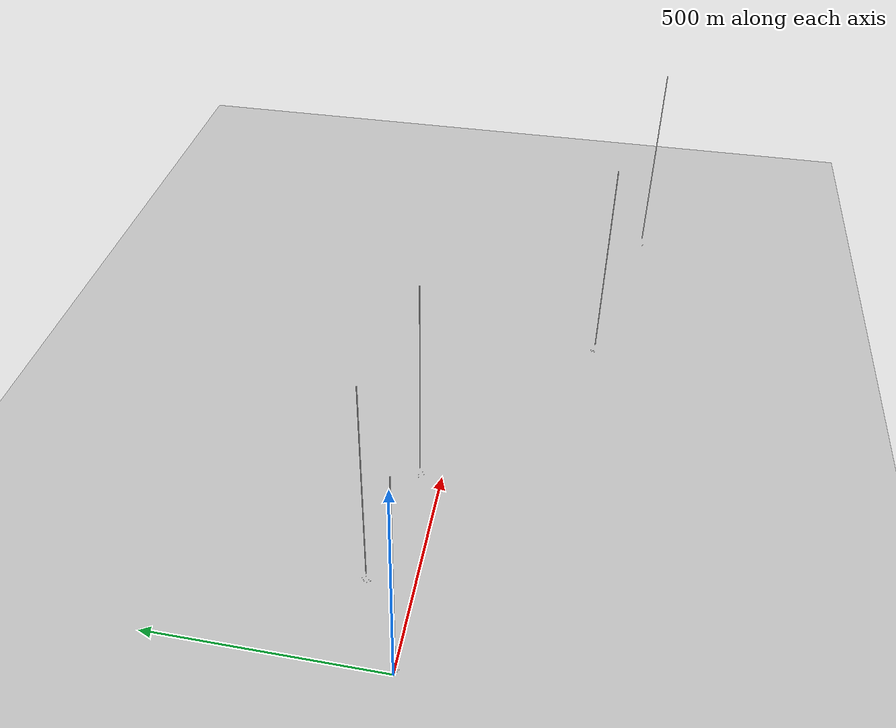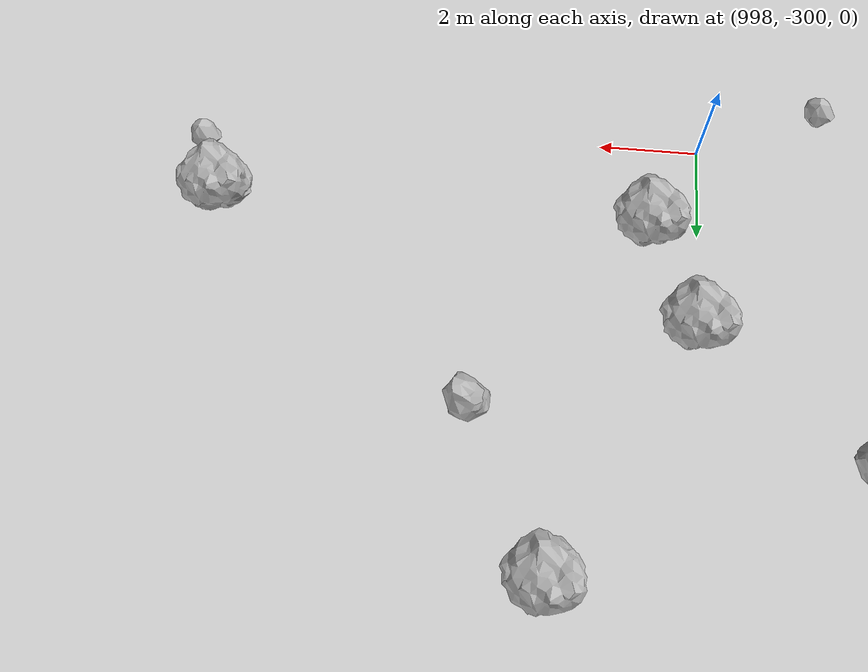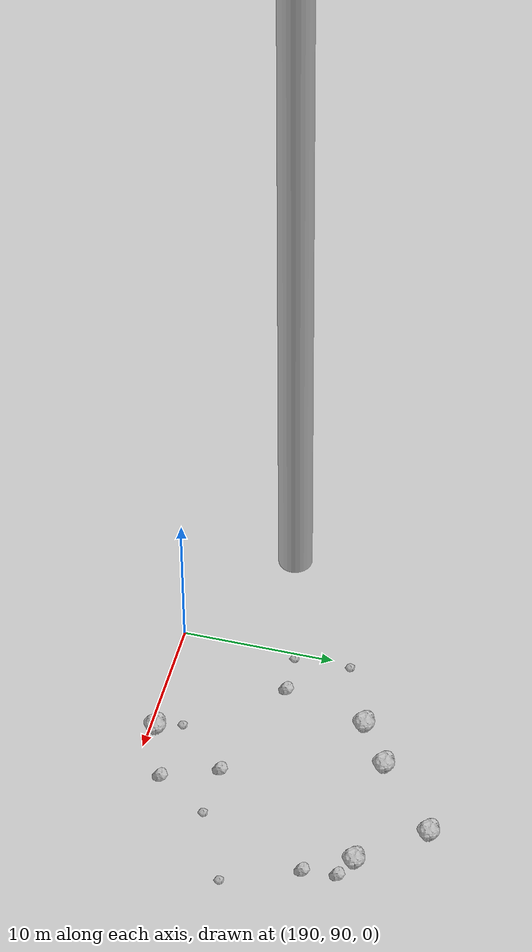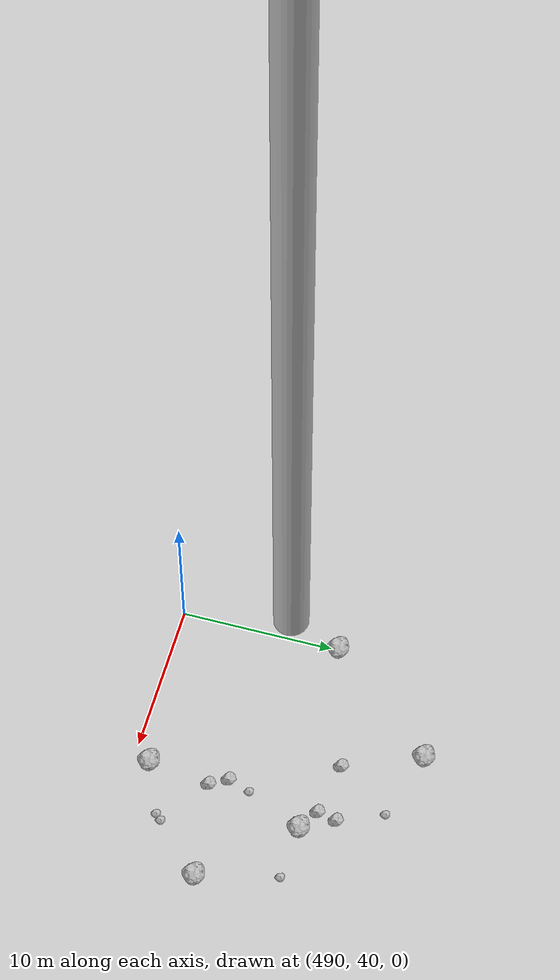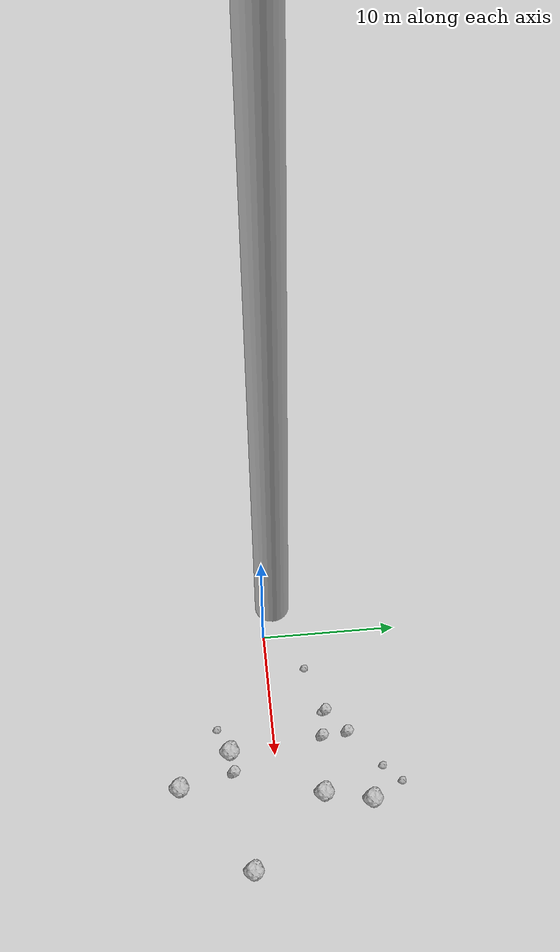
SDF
<?xml version="1.0" ?>
<sdf version="1.6">
  <world name="default">

    <include>
      <uri>model://custom_ground</uri>
    </include>

    <include>
      <uri>model://sun</uri>
    </include>

    <spherical_coordinates>
      <surface_model>EARTH_WGS84</surface_model>
      <latitude_deg>38.161479</latitude_deg>
      <longitude_deg>-122.454630</longitude_deg>
      <elevation>488.0</elevation>
      <heading_deg>90</heading_deg>
    </spherical_coordinates>

    <model name="rock1_0_0">
      <include>
        <uri>model://rock1</uri>
        <pose>18.945592582820066 -2.251782098358534 0.5 0 0 0</pose>
      </include>
    </model>
    <model name="rock1_0_1">
      <include>
        <uri>model://rock1</uri>
        <pose>13.510065274126166 3.206686466645195 0.5 0 0 0</pose>
      </include>
    </model>
    <model name="rock1_0_2">
      <include>
        <uri>model://rock1</uri>
        <pose>14.309338354610706 6.618686021669358 0.5 0 0 0</pose>
      </include>
    </model>
    <model name="rock1_0_3">
      <include>
        <uri>model://rock1</uri>
        <pose>12.240812636821385 -7.091646086739698 0.5 0 0 0</pose>
      </include>
    </model>
    <model name="rock1_0_4">
      <include>
        <uri>model://rock1</uri>
        <pose>9.663844182001531 -3.2994324802873054 0.5 0 0 0</pose>
      </include>
    </model>
    <model name="rock2_0_0">
      <include>
        <uri>model://rock2</uri>
        <pose>9.562469942733433 -3.0578161341875916 0.3 0 0 0</pose>
      </include>
    </model>
    <model name="rock2_0_1">
      <include>
        <uri>model://rock2</uri>
        <pose>8.71045852474718 5.432463528429315 0.3 0 0 0</pose>
      </include>
    </model>
    <model name="rock2_0_2">
      <include>
        <uri>model://rock2</uri>
        <pose>6.814870044980445 3.9917213263696834 0.3 0 0 0</pose>
      </include>
    </model>
    <model name="rock2_0_3">
      <include>
        <uri>model://rock2</uri>
        <pose>11.220508437540316 -3.0980979722758306 0.3 0 0 0</pose>
      </include>
    </model>
    <model name="rock2_0_4">
      <include>
        <uri>model://rock2</uri>
        <pose>8.866577930000199 3.562852186568195 0.3 0 0 0</pose>
      </include>
    </model>
    <model name="rock3_0_0">
      <include>
        <uri>model://rock3</uri>
        <pose>6.904161500761492 3.6552369714734834 0.2 0 0 0</pose>
      </include>
    </model>
    <model name="rock3_0_1">
      <include>
        <uri>model://rock3</uri>
        <pose>12.959544091633946 8.903511464414326 0.2 0 0 0</pose>
      </include>
    </model>
    <model name="rock3_0_2">
      <include>
        <uri>model://rock3</uri>
        <pose>11.646528310153869 7.654076282421919 0.2 0 0 0</pose>
      </include>
    </model>
    <model name="rock3_0_3">
      <include>
        <uri>model://rock3</uri>
        <pose>7.661260990533229 -4.116494251137119 0.2 0 0 0</pose>
      </include>
    </model>
    <model name="rock3_0_4">
      <include>
        <uri>model://rock3</uri>
        <pose>3.073325616213529 2.780366668401193 0.2 0 0 0</pose>
      </include>
    </model>
    <model name="rock1_1_0">
      <include>
        <uri>model://rock1</uri>
        <pose>195.0283665259713 103.26956270519105 0.5 0 0 0</pose>
      </include>
    </model>
    <model name="rock1_1_1">
      <include>
        <uri>model://rock1</uri>
        <pose>198.00020091039912 105.26463611699543 0.5 0 0 0</pose>
      </include>
    </model>
    <model name="rock1_1_2">
      <include>
        <uri>model://rock1</uri>
        <pose>202.64461187385226 109.20382075038688 0.5 0 0 0</pose>
      </include>
    </model>
    <model name="rock1_1_3">
      <include>
        <uri>model://rock1</uri>
        <pose>198.46462158729682 90.36379142407755 0.5 0 0 0</pose>
      </include>
    </model>
    <model name="rock1_1_4">
      <include>
        <uri>model://rock1</uri>
        <pose>205.89546072893415 105.19616234969338 0.5 0 0 0</pose>
      </include>
    </model>
    <model name="rock2_1_0">
      <include>
        <uri>model://rock2</uri>
        <pose>207.3605969811217 102.28776781576946 0.3 0 0 0</pose>
      </include>
    </model>
    <model name="rock2_1_1">
      <include>
        <uri>model://rock2</uri>
        <pose>193.3047598021332 97.73439522467586 0.3 0 0 0</pose>
      </include>
    </model>
    <model name="rock2_1_2">
      <include>
        <uri>model://rock2</uri>
        <pose>200.81700890472263 95.31495361997146 0.3 0 0 0</pose>
      </include>
    </model>
    <model name="rock2_1_3">
      <include>
        <uri>model://rock2</uri>
        <pose>207.18274994592605 104.48036436890085 0.3 0 0 0</pose>
      </include>
    </model>
    <model name="rock2_1_4">
      <include>
        <uri>model://rock2</uri>
        <pose>202.23922235069872 91.76917607000779 0.3 0 0 0</pose>
      </include>
    </model>
    <model name="rock3_1_0">
      <include>
        <uri>model://rock3</uri>
        <pose>190.55801388910342 97.55763730904896 0.2 0 0 0</pose>
      </include>
    </model>
    <model name="rock3_1_1">
      <include>
        <uri>model://rock3</uri>
        <pose>204.39052019020312 95.12035218046476 0.2 0 0 0</pose>
      </include>
    </model>
    <model name="rock3_1_2">
      <include>
        <uri>model://rock3</uri>
        <pose>197.7891808323422 91.99915048162183 0.2 0 0 0</pose>
      </include>
    </model>
    <model name="rock3_1_3">
      <include>
        <uri>model://rock3</uri>
        <pose>209.2907923985598 97.4721529990797 0.2 0 0 0</pose>
      </include>
    </model>
    <model name="rock3_1_4">
      <include>
        <uri>model://rock3</uri>
        <pose>190.4432332382952 101.26064084017686 0.2 0 0 0</pose>
      </include>
    </model>
    <model name="rock1_2_0">
      <include>
        <uri>model://rock1</uri>
        <pose>490.0923311977863 50.44746747189336 0.5 0 0 0</pose>
      </include>
    </model>
    <model name="rock1_2_1">
      <include>
        <uri>model://rock1</uri>
        <pose>507.9160781651087 45.98090122517868 0.5 0 0 0</pose>
      </include>
    </model>
    <model name="rock1_2_2">
      <include>
        <uri>model://rock1</uri>
        <pose>501.16482391039904 41.01665813985818 0.5 0 0 0</pose>
      </include>
    </model>
    <model name="rock1_2_3">
      <include>
        <uri>model://rock1</uri>
        <pose>503.12358656356747 51.348213806953055 0.5 0 0 0</pose>
      </include>
    </model>
    <model name="rock1_2_4">
      <include>
        <uri>model://rock1</uri>
        <pose>496.2595851745991 57.672542127124956 0.5 0 0 0</pose>
      </include>
    </model>
    <model name="rock2_2_0">
      <include>
        <uri>model://rock2</uri>
        <pose>498.18138945667175 52.816401486626226 0.3 0 0 0</pose>
      </include>
    </model>
    <model name="rock2_2_1">
      <include>
        <uri>model://rock2</uri>
        <pose>501.60325185276577 45.09989722320004 0.3 0 0 0</pose>
      </include>
    </model>
    <model name="rock2_2_2">
      <include>
        <uri>model://rock2</uri>
        <pose>501.926781302502 53.4645784116484 0.3 0 0 0</pose>
      </include>
    </model>
    <model name="rock2_2_3">
      <include>
        <uri>model://rock2</uri>
        <pose>500.96736608921384 46.23675080499163 0.3 0 0 0</pose>
      </include>
    </model>
    <model name="rock2_2_4">
      <include>
        <uri>model://rock2</uri>
        <pose>501.66904178340087 52.20899420933577 0.3 0 0 0</pose>
      </include>
    </model>
    <model name="rock3_2_0">
      <include>
        <uri>model://rock3</uri>
        <pose>500.6973805860492 56.29647294470887 0.2 0 0 0</pose>
      </include>
    </model>
    <model name="rock3_2_1">
      <include>
        <uri>model://rock3</uri>
        <pose>504.80522043513594 42.877326261110454 0.2 0 0 0</pose>
      </include>
    </model>
    <model name="rock3_2_2">
      <include>
        <uri>model://rock3</uri>
        <pose>504.44169131143843 42.48420689784209 0.2 0 0 0</pose>
      </include>
    </model>
    <model name="rock3_2_3">
      <include>
        <uri>model://rock3</uri>
        <pose>506.55799728003666 51.107461614786814 0.2 0 0 0</pose>
      </include>
    </model>
    <model name="rock3_2_4">
      <include>
        <uri>model://rock3</uri>
        <pose>501.4359358112301 47.66529406401717 0.2 0 0 0</pose>
      </include>
    </model>
    <model name="rock1_3_0">
      <include>
        <uri>model://rock1</uri>
        <pose>999.0075095894986 -298.1567963782276 0.5 0 0 0</pose>
      </include>
    </model>
    <model name="rock1_3_1">
      <include>
        <uri>model://rock1</uri>
        <pose>1004.7018617232811 -305.6449221544372 0.5 0 0 0</pose>
      </include>
    </model>
    <model name="rock1_3_2">
      <include>
        <uri>model://rock1</uri>
        <pose>1000.7503701664929 -290.8495286048481 0.5 0 0 0</pose>
      </include>
    </model>
    <model name="rock1_3_3">
      <include>
        <uri>model://rock1</uri>
        <pose>1007.7741240257825 -298.16359737065005 0.5 0 0 0</pose>
      </include>
    </model>
    <model name="rock1_3_4">
      <include>
        <uri>model://rock1</uri>
        <pose>998.0841846184887 -295.9686678093141 0.5 0 0 0</pose>
      </include>
    </model>
    <model name="rock2_3_0">
      <include>
        <uri>model://rock2</uri>
        <pose>994.8108933217845 -293.3823689815548 0.3 0 0 0</pose>
      </include>
    </model>
    <model name="rock2_3_1">
      <include>
        <uri>model://rock2</uri>
        <pose>1002.3121909205271 -293.99886425376934 0.3 0 0 0</pose>
      </include>
    </model>
    <model name="rock2_3_2">
      <include>
        <uri>model://rock2</uri>
        <pose>991.5485012716848 -298.12601409704166 0.3 0 0 0</pose>
      </include>
    </model>
    <model name="rock2_3_3">
      <include>
        <uri>model://rock2</uri>
        <pose>992.0861870293495 -302.83526047619216 0.3 0 0 0</pose>
      </include>
    </model>
    <model name="rock2_3_4">
      <include>
        <uri>model://rock2</uri>
        <pose>993.8319056671002 -300.44168622468607 0.3 0 0 0</pose>
      </include>
    </model>
    <model name="rock3_3_0">
      <include>
        <uri>model://rock3</uri>
        <pose>1008.2066380994096 -299.4571750514861 0.2 0 0 0</pose>
      </include>
    </model>
    <model name="rock3_3_1">
      <include>
        <uri>model://rock3</uri>
        <pose>995.4348608887009 -301.22461252041995 0.2 0 0 0</pose>
      </include>
    </model>
    <model name="rock3_3_2">
      <include>
        <uri>model://rock3</uri>
        <pose>1002.5489214349624 -306.72547832859624 0.2 0 0 0</pose>
      </include>
    </model>
    <model name="rock3_3_3">
      <include>
        <uri>model://rock3</uri>
        <pose>1007.3643044074154 -298.1844641634268 0.2 0 0 0</pose>
      </include>
    </model>
    <model name="rock3_3_4">
      <include>
        <uri>model://rock3</uri>
        <pose>991.9341018708163 -299.01803050245826 0.2 0 0 0</pose>
      </include>
    </model>
    <model name="rock1_4_0">
      <include>
        <uri>model://rock1</uri>
        <pose>1493.2281914423875 -402.869926064098 0.5 0 0 0</pose>
      </include>
    </model>
    <model name="rock1_4_1">
      <include>
        <uri>model://rock1</uri>
        <pose>1495.7569513185413 -399.8620350442882 0.5 0 0 0</pose>
      </include>
    </model>
    <model name="rock1_4_2">
      <include>
        <uri>model://rock1</uri>
        <pose>1505.1268428103767 -393.9993683744541 0.5 0 0 0</pose>
      </include>
    </model>
    <model name="rock1_4_3">
      <include>
        <uri>model://rock1</uri>
        <pose>1496.8113118558765 -404.4080340129234 0.5 0 0 0</pose>
      </include>
    </model>
    <model name="rock1_4_4">
      <include>
        <uri>model://rock1</uri>
        <pose>1506.9095529919841 -399.59000745016624 0.5 0 0 0</pose>
      </include>
    </model>
    <model name="rock2_4_0">
      <include>
        <uri>model://rock2</uri>
        <pose>1503.923161474965 -393.29846635982307 0.3 0 0 0</pose>
      </include>
    </model>
    <model name="rock2_4_1">
      <include>
        <uri>model://rock2</uri>
        <pose>1496.5331164111678 -393.6018658446375 0.3 0 0 0</pose>
      </include>
    </model>
    <model name="rock2_4_2">
      <include>
        <uri>model://rock2</uri>
        <pose>1498.0555282427276 -396.66949113191953 0.3 0 0 0</pose>
      </include>
    </model>
    <model name="rock2_4_3">
      <include>
        <uri>model://rock2</uri>
        <pose>1501.0919502176316 -394.3377825574771 0.3 0 0 0</pose>
      </include>
    </model>
    <model name="rock2_4_4">
      <include>
        <uri>model://rock2</uri>
        <pose>1508.8365913099751 -400.5287526334427 0.3 0 0 0</pose>
      </include>
    </model>
    <model name="rock3_4_0">
      <include>
        <uri>model://rock3</uri>
        <pose>1498.500218423118 -401.45482847103233 0.2 0 0 0</pose>
      </include>
    </model>
    <model name="rock3_4_1">
      <include>
        <uri>model://rock3</uri>
        <pose>1501.905983962302 -405.00799119564624 0.2 0 0 0</pose>
      </include>
    </model>
    <model name="rock3_4_2">
      <include>
        <uri>model://rock3</uri>
        <pose>1492.3200013404787 -403.9757309159606 0.2 0 0 0</pose>
      </include>
    </model>
    <model name="rock3_4_3">
      <include>
        <uri>model://rock3</uri>
        <pose>1493.1239214631032 -402.2078133773231 0.2 0 0 0</pose>
      </include>
    </model>
    <model name="rock3_4_4">
      <include>
        <uri>model://rock3</uri>
        <pose>1496.541023027097 -391.1344479044794 0.2 0 0 0</pose>
      </include>
    </model>

    <model name="cylinder_1">
      <static>true</static>
      <link name="link">
        <visual name="visual">
          <geometry>
            <cylinder>
              <radius>1</radius>
              <length>500</length>
            </cylinder>
          </geometry>
        </visual>
      </link>
      <pose>10 0 270 0 0 0</pose>
    </model>

    <model name="cylinder_2">
      <static>true</static>
      <link name="link">
        <visual name="visual">
          <geometry>
            <cylinder>
              <radius>1</radius>
              <length>500</length>
            </cylinder>
          </geometry>
        </visual>
      </link>
      <pose>200 100 270 0 0 0</pose>
    </model>

    <model name="cylinder_3">
      <static>true</static>
      <link name="link">
        <visual name="visual">
          <geometry>
            <cylinder>
              <radius>1</radius>
              <length>500</length>
            </cylinder>
          </geometry>
        </visual>
      </link>
      <pose>500 50 270 0 0 0</pose>
    </model>

    <model name="cylinder_4">
      <static>true</static>
      <link name="link">
        <visual name="visual">
          <geometry>
            <cylinder>
              <radius>1</radius>
              <length>500</length>
            </cylinder>
          </geometry>
        </visual>
      </link>
      <pose>1000 -300 270 0 0 0</pose>
    </model>

    <model name="cylinder_5">
      <static>true</static>
      <link name="link">
        <visual name="visual">
          <geometry>
            <cylinder>
              <radius>1</radius>
              <length>500</length>
            </cylinder>
          </geometry>
        </visual>
      </link>
      <pose>1500 -400 270 0 0 0</pose>
    </model>

  </world>
</sdf>

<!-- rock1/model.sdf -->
<sdf version="1.6">
  <model name="rock1">
    <static>true</static> <!-- Set to true if the model should not move -->
    <pose>0 0 0 0 0 0</pose>

    <!--z offset is 0.5 for full scale-->

    <link name="link">
      <collision name="rock1_collision">
        <geometry>
          <mesh>
            <uri>model://meshes/rock1.dae</uri>
          </mesh>
        </geometry>
      </collision>
      <visual name="rock1_visual">
        <geometry>
          <mesh>
            <uri>model://meshes/rock1.dae</uri>
          </mesh>
        </geometry>
        <material>
          <script>
            <uri>model://materials/scripts/sand_pebbles.material</uri>
            <name>custom_ground/Image</name>
          </script>
        </material>
      </visual>
    </link>
  </model>
</sdf>

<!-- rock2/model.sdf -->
<sdf version="1.6">
  <model name="rock2">
    <static>true</static> <!-- Set to true if the model should not move -->
    <pose>0 0 0 0 0 0</pose>

    <!--z offset is 0.3 for full scale-->

    <link name="link">
      <collision name="rock2_collision">
        <geometry>
          <mesh>
            <uri>model://meshes/rock2.dae</uri>
          </mesh>
        </geometry>
      </collision>
      <visual name="rock2_visual">
        <geometry>
          <mesh>
            <uri>model://meshes/rock2.dae</uri>
          </mesh>
        </geometry>
        <material>
          <script>
            <uri>model://materials/scripts/sand_pebbles.material</uri>
            <name>custom_ground/Image</name>
          </script>
        </material>
      </visual>
    </link>
  </model>
</sdf>

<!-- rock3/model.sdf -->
<sdf version="1.6">
  <model name="rock3">
    <static>true</static> <!-- Set to true if the model should not move -->
    <pose>0 0 0 0 0 0</pose>

    <!--z offset is 0.2 for full scale-->

    <link name="link">
      <collision name="rock3_collision">
        <geometry>
          <mesh>
            <uri>model://meshes/rock3.dae</uri>
          </mesh>
        </geometry>
      </collision>
      <visual name="rock3_visual">
        <geometry>
          <mesh>
            <uri>model://meshes/rock3.dae</uri>
          </mesh>
        </geometry>
        <material>
          <script>
            <uri>model://materials/scripts/sand_pebbles.material</uri>
            <name>custom_ground/Image</name>
          </script>
        </material>
      </visual>
    </link>
  </model>
</sdf>

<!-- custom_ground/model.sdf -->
<sdf version="1.6">
  <model name="custom_ground">
    <static>true</static> <!-- Ground is static and immovable -->
    <link name="ground_link">
      <pose>240 0 0 0 0 0</pose> <!-- Position and orientation relative to the world -->
      <!-- Visual Representation -->
      <visual name="ground_visual">
        <geometry>
          <plane>
            <normal>0 0 1</normal> <!-- Upward facing plane -->
            <size>500 500</size> <!-- Size of the plane -->
          </plane>
        </geometry>
        <material>
          <script>
            <uri>model://materials/scripts/sand_pebbles.material</uri>
            <name>custom_ground/Image</name>
          </script>
        </material>
      </visual>

      <!-- Collision Representation -->
      <collision name="ground_collision">
        <geometry>
          <plane>
            <normal>0 0 1</normal>
            <size>100 100</size>
          </plane>
        </geometry>
      </collision>

    </link>
  </model>
</sdf>
